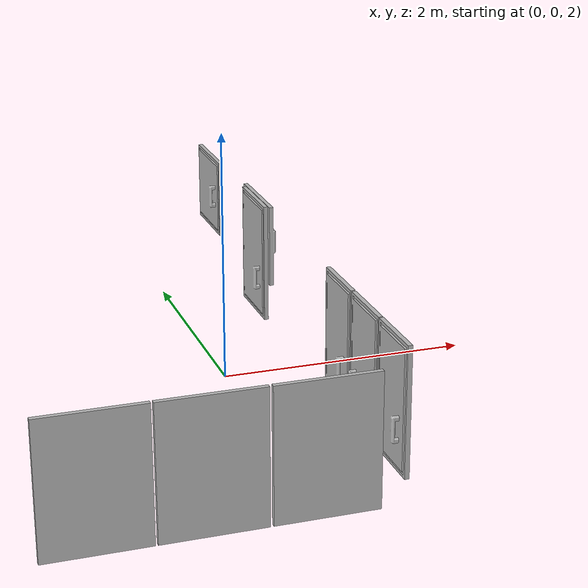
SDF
<?xml version="1.0"?>
<!-- created with Phobos 1.0.1 "Capricious Choutengan" -->
<sdf version="1.5">
  <model name="kitchen_dynamic">
    <link name="root_dynamic">
      <pose>0 0 0 0 0 0</pose>
      <inertial>
        <mass>0.001</mass>
        <inertia>
          <ixx>0.001</ixx>
          <ixy>0</ixy>
          <ixz>0</ixz>
          <iyy>0.001</iyy>
          <iyz>0</iyz>
          <izz>0.001</izz>
        </inertia>
        <pose>0 0 0 0 0 0</pose>
      </inertial>
    </link>
    <link name="CabinetDoor_revolve.007">
      <pose>-1.07047 -2.06474 1.77074 0 0 0</pose>
      <inertial>
        <mass>0.5</mass>
        <inertia>
          <ixx>0.04076</ixx>
          <ixy>0</ixy>
          <ixz>-0.0004</ixz>
          <iyy>0.02003</iyy>
          <iyz>0.00214</iyz>
          <izz>0.02125</izz>
        </inertia>
        <pose>0.35997 -0.01108 0.36647 0 0 0</pose>
      </inertial>
      <collision name="CabinetDoor.008.000">
        <pose>0.35997 -0.01108 0.69432 0 0 0</pose>
        <geometry>
          <mesh>
            <uri>model://kitchen_dynamic/meshes/Cabinets.022.dae</uri>
            <scale>1.0 1.0 1.0</scale>
          </mesh>
        </geometry>
      </collision>
      <visual name="CabinetDoor.008">
        <pose>0.35996896028518677 -0.011080265045166016 0.694316029548645 -5.960462345910855e-08 1.0554417428920715e-07 1.230682045161302e-07</pose>
        <geometry>
          <mesh>
            <uri>model://kitchen_dynamic/meshes/Cabinets.019.dae</uri>
            <scale>1.0 1.0 1.0</scale>
          </mesh>
        </geometry>
      </visual>
    </link>
    <link name="CabinetDoor_revolve.006">
      <pose>0.51584 -2.06474 1.77074 0 0 -1.5708</pose>
      <inertial>
        <mass>0.5</mass>
        <inertia>
          <ixx>0.04076</ixx>
          <ixy>0</ixy>
          <ixz>-0.0004</ixz>
          <iyy>0.02003</iyy>
          <iyz>0.00214</iyz>
          <izz>0.02125</izz>
        </inertia>
        <pose>0.01108 -0.35997 0.36647 0 0 0</pose>
      </inertial>
      <collision name="CabinetDoor.007.000">
        <pose>0.01108 -0.35997 0.69432 0 0 0</pose>
        <geometry>
          <mesh>
            <uri>model://kitchen_dynamic/meshes/Cabinets.021.dae</uri>
            <scale>1.0 1.0 1.0</scale>
          </mesh>
        </geometry>
      </collision>
      <visual name="CabinetDoor.007">
        <pose>0.011080265045166016 -0.35996896028518677 0.6943163871765137 -9.473106367808952e-16 -5.960462345910855e-08 1.9841792653352286e-09</pose>
        <geometry>
          <mesh>
            <uri>model://kitchen_dynamic/meshes/Cabinets.018.dae</uri>
            <scale>1.0 1.0 1.0</scale>
          </mesh>
        </geometry>
      </visual>
    </link>
    <link name="CabinetDoor_revolve.008">
      <pose>-1.88167 -2.06474 1.77074 0 0 0</pose>
      <inertial>
        <mass>0.5</mass>
        <inertia>
          <ixx>0.04076</ixx>
          <ixy>0</ixy>
          <ixz>-0.0004</ixz>
          <iyy>0.02003</iyy>
          <iyz>0.00214</iyz>
          <izz>0.02125</izz>
        </inertia>
        <pose>0.35997 -0.01108 0.36647 0 0 0</pose>
      </inertial>
      <collision name="CabinetDoor.009.000">
        <pose>0.35997 -0.01108 0.69432 0 0 0</pose>
        <geometry>
          <mesh>
            <uri>model://kitchen_dynamic/meshes/Cabinets.023.dae</uri>
            <scale>1.0 1.0 1.0</scale>
          </mesh>
        </geometry>
      </collision>
      <visual name="CabinetDoor.009">
        <pose>0.359968900680542 -0.011080503463745117 0.6943162679672241 -5.960462345910855e-08 5.960465188081798e-08 0.0</pose>
        <geometry>
          <mesh>
            <uri>model://kitchen_dynamic/meshes/Cabinets.020.dae</uri>
            <scale>1.0 1.0 1.0</scale>
          </mesh>
        </geometry>
      </visual>
    </link>
    <link name="CabinetDoor_revolve.005">
      <pose>0.87159 -1.16978 1.77074 0 0 0</pose>
      <inertial>
        <mass>0.5</mass>
        <inertia>
          <ixx>0.04076</ixx>
          <ixy>0</ixy>
          <ixz>-0.0004</ixz>
          <iyy>0.02003</iyy>
          <iyz>0.00214</iyz>
          <izz>0.02125</izz>
        </inertia>
        <pose>0.01108 -0.35997 0.36647 0 0 0</pose>
      </inertial>
      <collision name="CabinetDoor.004.002">
        <pose>0.01108 -0.35997 0.69432 0 0 0</pose>
        <geometry>
          <mesh>
            <uri>model://kitchen_dynamic/meshes/Cabinets.016.dae</uri>
            <scale>1.0 1.0 1.0</scale>
          </mesh>
        </geometry>
      </collision>
      <visual name="CabinetDoor.006">
        <pose>0.011080324649810791 -0.3599686622619629 0.6943162679672241 1.0554420981634394e-07 3.3881317890172014e-21 -2.8421706042272218e-14</pose>
        <geometry>
          <mesh>
            <uri>model://kitchen_dynamic/meshes/Cabinets.015.dae</uri>
            <scale>1.0 1.0 1.0</scale>
          </mesh>
        </geometry>
      </visual>
    </link>
    <link name="CabinetDoor_revolve.003">
      <pose>0.87159 -0.01653 1.77074 0 0 0</pose>
      <inertial>
        <mass>0.5</mass>
        <inertia>
          <ixx>0.04076</ixx>
          <ixy>-1e-05</ixy>
          <ixz>-0.0004</ixz>
          <iyy>0.02003</iyy>
          <iyz>0.00214</iyz>
          <izz>0.02125</izz>
        </inertia>
        <pose>0.01108 -0.35997 0.36647 0 0 0</pose>
      </inertial>
      <collision name="CabinetDoor.004.000">
        <pose>0.01108 -0.35997 0.69432 0 0 0</pose>
        <geometry>
          <mesh>
            <uri>model://kitchen_dynamic/meshes/Cabinets.012.dae</uri>
            <scale>1.0 1.0 1.0</scale>
          </mesh>
        </geometry>
      </collision>
      <visual name="CabinetDoor.004">
        <pose>0.011080324649810791 -0.359968900680542 0.6943162679672241 0.0 -0.0 -2.842170943040401e-14</pose>
        <geometry>
          <mesh>
            <uri>model://kitchen_dynamic/meshes/Cabinets.011.dae</uri>
            <scale>1.0 1.0 1.0</scale>
          </mesh>
        </geometry>
      </visual>
    </link>
    <link name="CabinetDoor_revolve.004">
      <pose>0.87159 -1.13262 1.77074 0 0 0</pose>
      <inertial>
        <mass>0.5</mass>
        <inertia>
          <ixx>0.04076</ixx>
          <ixy>-1e-05</ixy>
          <ixz>-0.0004</ixz>
          <iyy>0.02003</iyy>
          <iyz>0.00214</iyz>
          <izz>0.02125</izz>
        </inertia>
        <pose>0.01108 0.35997 0.36647 0 0 0</pose>
      </inertial>
      <collision name="CabinetDoor.004.001">
        <pose>0.01108 0.35997 0.69432 0 0 0</pose>
        <geometry>
          <mesh>
            <uri>model://kitchen_dynamic/meshes/Cabinets.013.dae</uri>
            <scale>1.0 1.0 1.0</scale>
          </mesh>
        </geometry>
      </collision>
      <visual name="CabinetDoor.005">
        <pose>0.01108020544052124 0.3599686026573181 0.6943162679672241 0.0 -0.0 4.263256414560601e-14</pose>
        <geometry>
          <mesh>
            <uri>model://kitchen_dynamic/meshes/Cabinets.014.dae</uri>
            <scale>1.0 1.0 1.0</scale>
          </mesh>
        </geometry>
      </visual>
    </link>
    <link name="CabinetDoor_revolve.002">
      <pose>0.87159 2.26898 1.77074 0 0 0</pose>
      <inertial>
        <mass>0.5</mass>
        <inertia>
          <ixx>0.04076</ixx>
          <ixy>-1e-05</ixy>
          <ixz>-0.0004</ixz>
          <iyy>0.02003</iyy>
          <iyz>0.00214</iyz>
          <izz>0.02125</izz>
        </inertia>
        <pose>0.01108 -0.35997 0.36647 0 0 0</pose>
      </inertial>
      <collision name="CabinetDoor.003.col">
        <pose>0.01108 -0.35997 0.69432 0 0 0</pose>
        <geometry>
          <mesh>
            <uri>model://kitchen_dynamic/meshes/Cabinets.008.dae</uri>
            <scale>1.0 1.0 1.0</scale>
          </mesh>
        </geometry>
      </collision>
      <visual name="CabinetDoor.003">
        <pose>0.011080324649810791 -0.359968900680542 0.6943161487579346 0.0 -0.0 -2.842170943040401e-14</pose>
        <geometry>
          <mesh>
            <uri>model://kitchen_dynamic/meshes/Cabinets.001.dae</uri>
            <scale>1.0 1.0 1.0</scale>
          </mesh>
        </geometry>
      </visual>
    </link>
    <link name="CabinetDoor_revolve">
      <pose>0.87159 3.77577 2.10183 0 0 0</pose>
      <inertial>
        <mass>0.5</mass>
        <inertia>
          <ixx>0.05492</ixx>
          <ixy>-1e-05</ixy>
          <ixz>-0.00054</ixz>
          <iyy>0.02418</iyy>
          <iyz>0.00273</iyz>
          <izz>0.02863</izz>
        </inertia>
        <pose>0.01108 -0.34558 0.36647 0 0 0</pose>
      </inertial>
      <collision name="CabinetDoor.col">
        <pose>0.01108 -0.34558 0.36647 0 0 0</pose>
        <geometry>
          <mesh>
            <uri>model://kitchen_dynamic/meshes/Cabinets.005.dae</uri>
            <scale>1.0 1.0 1.0</scale>
          </mesh>
        </geometry>
      </collision>
      <visual name="CabinetDoor">
        <pose>0.011080563068389893 -0.34557580947875977 0.3664677143096924 0.0 -0.0 0.0</pose>
        <geometry>
          <mesh>
            <uri>model://kitchen_dynamic/meshes/Cabinets.003.dae</uri>
            <scale>1.07738 1.04823 1.07738</scale>
          </mesh>
        </geometry>
      </visual>
    </link>
    <link name="CabinetDoor_revolve.001">
      <pose>0.87159 2.32122 2.10183 0 0 0</pose>
      <inertial>
        <mass>0.5</mass>
        <inertia>
          <ixx>0.05492</ixx>
          <ixy>-1e-05</ixy>
          <ixz>-0.00054</ixz>
          <iyy>0.02418</iyy>
          <iyz>0.00273</iyz>
          <izz>0.02863</izz>
        </inertia>
        <pose>0.01108 -0.34558 0.36647 0 0 0</pose>
      </inertial>
      <collision name="CabinetDoor.col.001">
        <pose>-0.01108 0.35997 -0.36647 0 -3.14159 0</pose>
        <geometry>
          <mesh>
            <uri>model://kitchen_dynamic/meshes/Cabinets.006.dae</uri>
            <scale>-1.0 -1.04165 -1.0</scale>
          </mesh>
        </geometry>
      </collision>
      <visual name="CabinetDoor.002">
        <pose>0.011080443859100342 -0.34557557106018066 0.3664677143096924 -6.20874018864015e-08 -0.0 0.0</pose>
        <geometry>
          <mesh>
            <uri>model://kitchen_dynamic/meshes/Cabinets.007.dae</uri>
            <scale>-1.0 -1.04165 -1.0</scale>
          </mesh>
        </geometry>
      </visual>
    </link>
    <joint type="revolute" name="CabinetDoor_revolve.002">
      <parent>root_dynamic</parent>
      <child>CabinetDoor_revolve.002</child>
      <pose>0.0 0.0 0.0 0.0 0.0 0.0</pose>
      <axis>
        <xyz>0 0 1.0</xyz>
        <limit>
          <lower>-3.0</lower>
          <upper>0</upper>
          <effort>0</effort>
          <velocity>0</velocity>
        </limit>
      </axis>
    </joint>
    <joint type="revolute" name="CabinetDoor_revolve.007">
      <parent>root_dynamic</parent>
      <child>CabinetDoor_revolve.007</child>
      <pose>0.0 0.0 0.0 0.0 0.0 0.0</pose>
      <axis>
        <xyz>0 0 1.0</xyz>
        <limit>
          <lower>-3.0</lower>
          <upper>0</upper>
          <effort>0</effort>
          <velocity>0</velocity>
        </limit>
      </axis>
    </joint>
    <joint type="revolute" name="CabinetDoor_revolve.006">
      <parent>root_dynamic</parent>
      <child>CabinetDoor_revolve.006</child>
      <pose>0.0 0.0 0.0 0.0 0.0 0.0</pose>
      <axis>
        <xyz>0 0 1.0</xyz>
        <limit>
          <lower>-3.0</lower>
          <upper>0</upper>
          <effort>0</effort>
          <velocity>0</velocity>
        </limit>
      </axis>
    </joint>
    <joint type="revolute" name="CabinetDoor_revolve.008">
      <parent>root_dynamic</parent>
      <child>CabinetDoor_revolve.008</child>
      <pose>0.0 0.0 0.0 0.0 0.0 0.0</pose>
      <axis>
        <xyz>0 0 1.0</xyz>
        <limit>
          <lower>-3.0</lower>
          <upper>0</upper>
          <effort>0</effort>
          <velocity>0</velocity>
        </limit>
      </axis>
    </joint>
    <joint type="revolute" name="CabinetDoor_revolve.005">
      <parent>root_dynamic</parent>
      <child>CabinetDoor_revolve.005</child>
      <pose>0.0 0.0 0.0 0.0 0.0 0.0</pose>
      <axis>
        <xyz>0 0 1.0</xyz>
        <limit>
          <lower>-3.0</lower>
          <upper>0</upper>
          <effort>0</effort>
          <velocity>0</velocity>
        </limit>
      </axis>
    </joint>
    <joint type="revolute" name="CabinetDoor_revolve.003">
      <parent>root_dynamic</parent>
      <child>CabinetDoor_revolve.003</child>
      <pose>0.0 0.0 0.0 0.0 0.0 0.0</pose>
      <axis>
        <xyz>0 0 1.0</xyz>
        <limit>
          <lower>-3.0</lower>
          <upper>0</upper>
          <effort>0</effort>
          <velocity>0</velocity>
        </limit>
      </axis>
    </joint>
    <joint type="revolute" name="CabinetDoor_revolve.004">
      <parent>root_dynamic</parent>
      <child>CabinetDoor_revolve.004</child>
      <pose>0.0 0.0 0.0 0.0 0.0 0.0</pose>
      <axis>
        <xyz>0 0 1.0</xyz>
        <limit>
          <lower>-3.0</lower>
          <upper>0</upper>
          <effort>0</effort>
          <velocity>0</velocity>
        </limit>
      </axis>
    </joint>
    <joint type="revolute" name="CabinetDoor_revolve">
      <parent>root_dynamic</parent>
      <child>CabinetDoor_revolve</child>
      <pose>0.0 0.0 0.0 0.0 0.0 0.0</pose>
      <axis>
        <xyz>0 0 1.0</xyz>
        <limit>
          <lower>-3.0</lower>
          <upper>0</upper>
          <effort>0</effort>
          <velocity>0</velocity>
        </limit>
      </axis>
    </joint>
    <joint type="revolute" name="CabinetDoor_revolve.001">
      <parent>root_dynamic</parent>
      <child>CabinetDoor_revolve.001</child>
      <pose>0.0 0.0 0.0 0.0 0.0 0.0</pose>
      <axis>
        <xyz>0 0 1.0</xyz>
        <limit>
          <lower>-3.0</lower>
          <upper>0</upper>
          <effort>0</effort>
          <velocity>0</velocity>
        </limit>
      </axis>
    </joint>
  </model>
</sdf>
